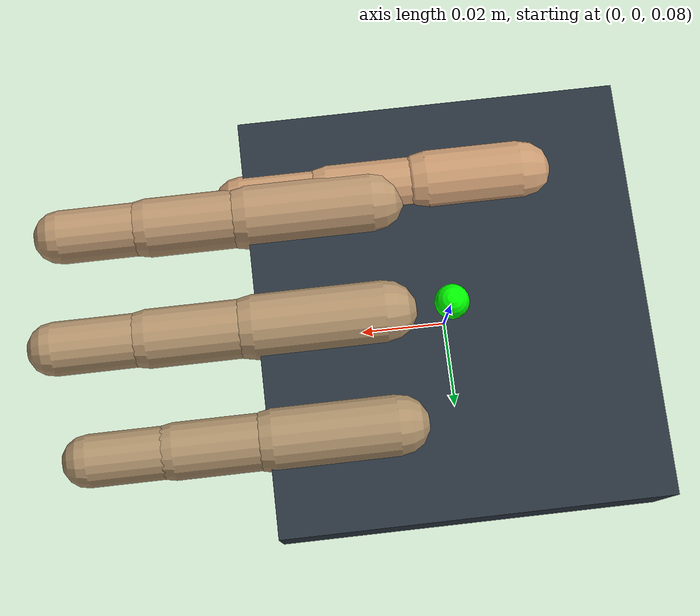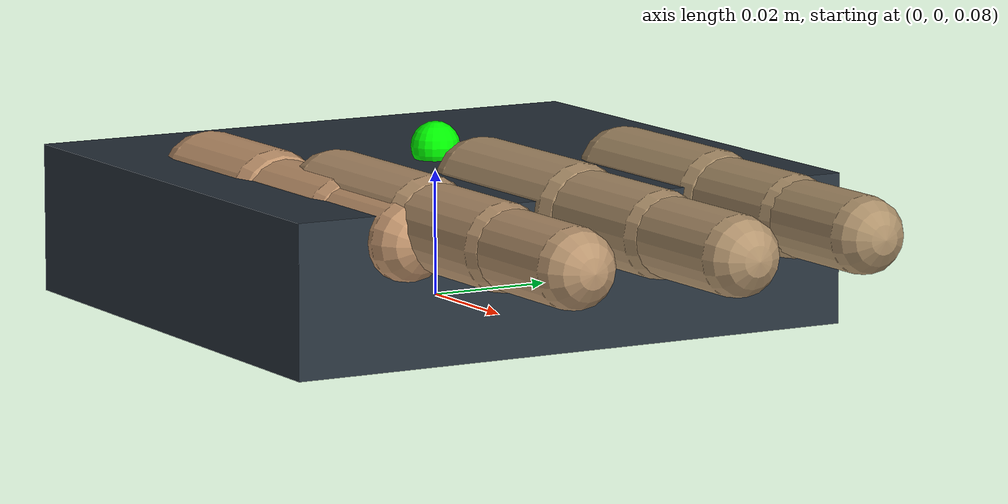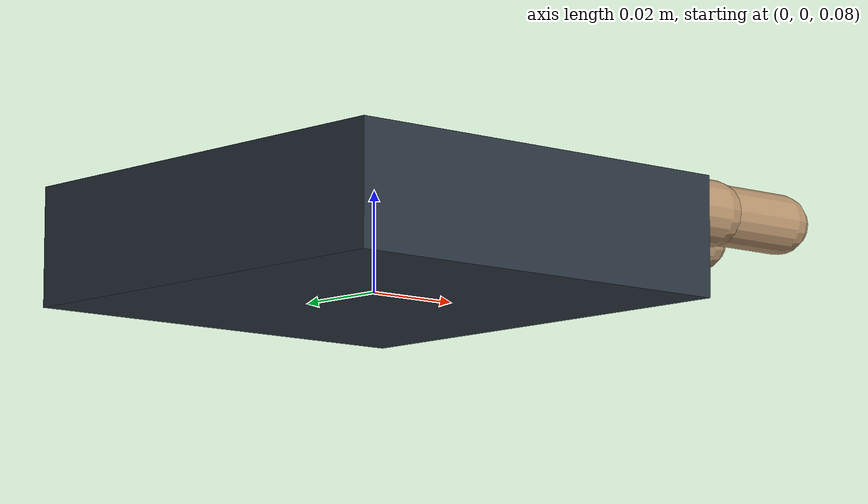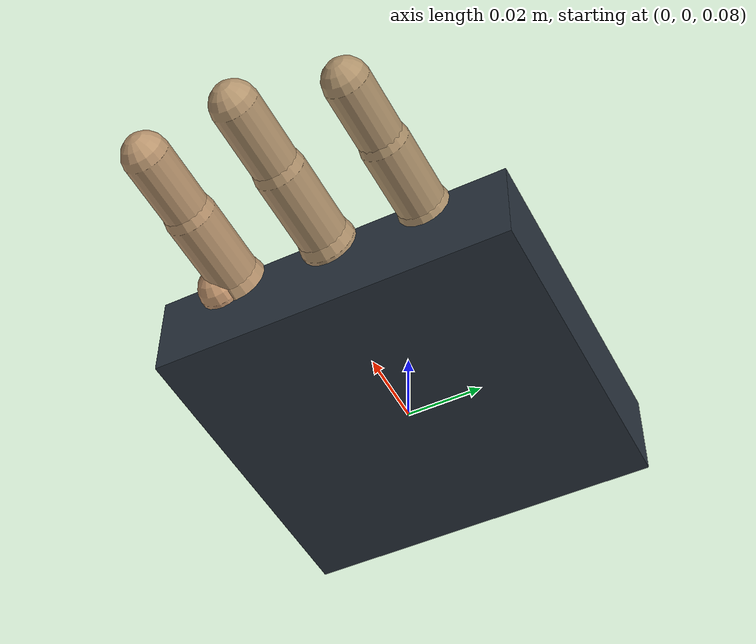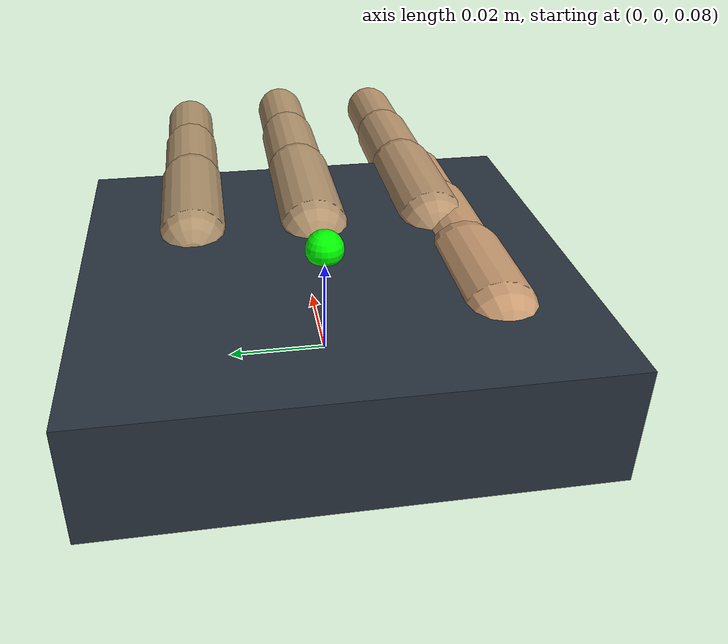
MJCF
<mujoco model="dexplay_xhand_phase0">
  <compiler angle="radian"/>
  <option timestep="0.0025" integrator="RK4" gravity="0 0 -1.5" iterations="30" ls_iterations="20"/>
  <size njmax="1500" nconmax="1500"/>

  <default>
    <joint damping="0.05" armature="0.004" limited="true"/>
    <geom condim="6" friction="1.0 0.05 0.002"/>
  </default>

  <worldbody>
    <light pos="0 0 1.2"/>

    <body name="palm" pos="0 0 0.09">
      <geom name="palm_geom" type="box" size="0.044 0.048 0.012" rgba="0.16 0.20 0.24 1" mass="0.23"/>
      <site name="palm_center" pos="0 0 0.014" size="0.004" rgba="0 1 0 1"/>

      <body name="x_thumb_base" pos="-0.020 -0.030 0.008">
        <joint name="x_thumb_0" type="hinge" axis="0 0 1" range="-0.35 0.90"/>
        <geom type="capsule" fromto="0 0 0 0.022 0 0" size="0.008" rgba="0.78 0.60 0.44 1" mass="0.030"/>
        <body pos="0.022 0 0">
          <joint name="x_thumb_1" type="hinge" axis="0 1 0" range="-0.30 1.40"/>
          <geom type="capsule" fromto="0 0 0 0.023 0 0" size="0.007" rgba="0.78 0.60 0.44 1" mass="0.020"/>
          <body pos="0.023 0 0">
            <joint name="x_thumb_2" type="hinge" axis="0 1 0" range="-0.20 1.35"/>
            <geom type="capsule" fromto="0 0 0 0.020 0 0" size="0.0063" rgba="0.78 0.60 0.44 1" mass="0.014"/>
          </body>
        </body>
      </body>

      <body name="x_index_base" pos="0.015 -0.026 0.010">
        <joint name="x_index_0" type="hinge" axis="0 0 1" range="-0.35 0.55"/>
        <geom type="capsule" fromto="0 0 0 0.029 0 0" size="0.0075" rgba="0.72 0.58 0.43 1" mass="0.025"/>
        <body pos="0.029 0 0">
          <joint name="x_index_1" type="hinge" axis="0 1 0" range="-0.25 1.35"/>
          <geom type="capsule" fromto="0 0 0 0.023 0 0" size="0.0068" rgba="0.72 0.58 0.43 1" mass="0.018"/>
          <body pos="0.023 0 0">
            <joint name="x_index_2" type="hinge" axis="0 1 0" range="-0.25 1.35"/>
            <geom type="capsule" fromto="0 0 0 0.020 0 0" size="0.0062" rgba="0.72 0.58 0.43 1" mass="0.013"/>
          </body>
        </body>
      </body>

      <body name="x_middle_base" pos="0.015 0.000 0.010">
        <joint name="x_middle_0" type="hinge" axis="0 0 1" range="-0.35 0.55"/>
        <geom type="capsule" fromto="0 0 0 0.030 0 0" size="0.0075" rgba="0.70 0.58 0.43 1" mass="0.025"/>
        <body pos="0.030 0 0">
          <joint name="x_middle_1" type="hinge" axis="0 1 0" range="-0.25 1.35"/>
          <geom type="capsule" fromto="0 0 0 0.024 0 0" size="0.0068" rgba="0.70 0.58 0.43 1" mass="0.018"/>
          <body pos="0.024 0 0">
            <joint name="x_middle_2" type="hinge" axis="0 1 0" range="-0.25 1.35"/>
            <geom type="capsule" fromto="0 0 0 0.021 0 0" size="0.0062" rgba="0.70 0.58 0.43 1" mass="0.013"/>
          </body>
        </body>
      </body>

      <body name="x_ring_base" pos="0.015 0.026 0.010">
        <joint name="x_ring_0" type="hinge" axis="0 0 1" range="-0.35 0.55"/>
        <geom type="capsule" fromto="0 0 0 0.028 0 0" size="0.0072" rgba="0.68 0.57 0.42 1" mass="0.023"/>
        <body pos="0.028 0 0">
          <joint name="x_ring_1" type="hinge" axis="0 1 0" range="-0.25 1.35"/>
          <geom type="capsule" fromto="0 0 0 0.022 0 0" size="0.0065" rgba="0.68 0.57 0.42 1" mass="0.017"/>
          <body pos="0.022 0 0">
            <joint name="x_ring_2" type="hinge" axis="0 1 0" range="-0.25 1.35"/>
            <geom type="capsule" fromto="0 0 0 0.019 0 0" size="0.0060" rgba="0.68 0.57 0.42 1" mass="0.012"/>
          </body>
        </body>
      </body>
    </body>

  </worldbody>

  <keyframe>
    <key name="default" qpos="0.30 0.70 0.65 0.08 0.62 0.58 0.10 0.65 0.60 0.12 0.68 0.60"/>
  </keyframe>
</mujoco>
